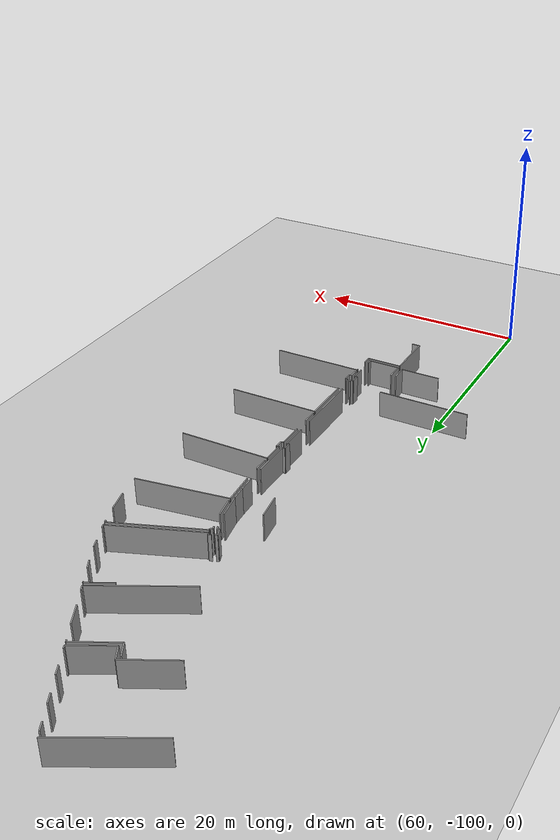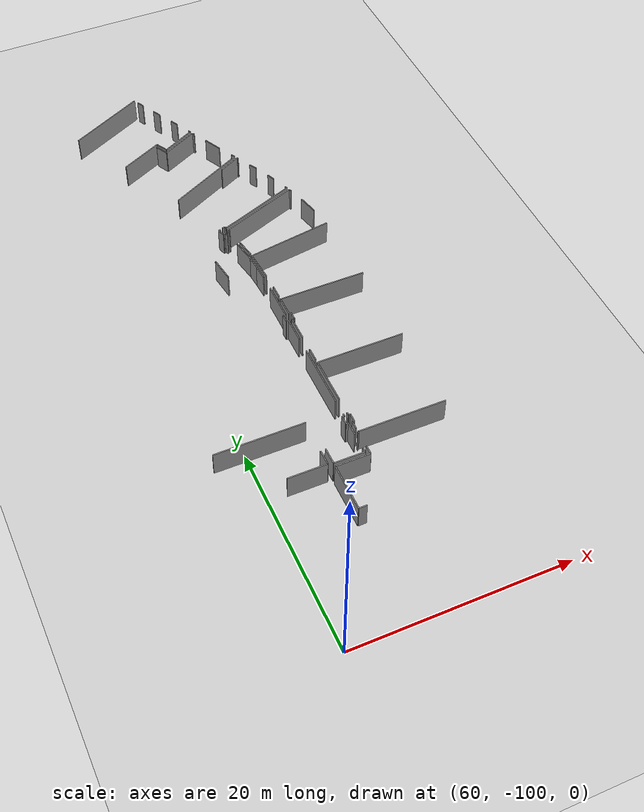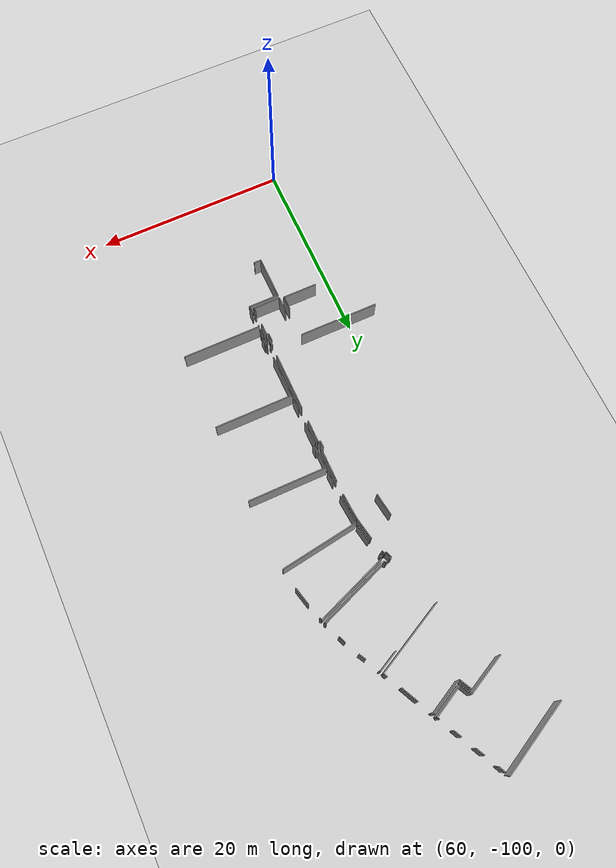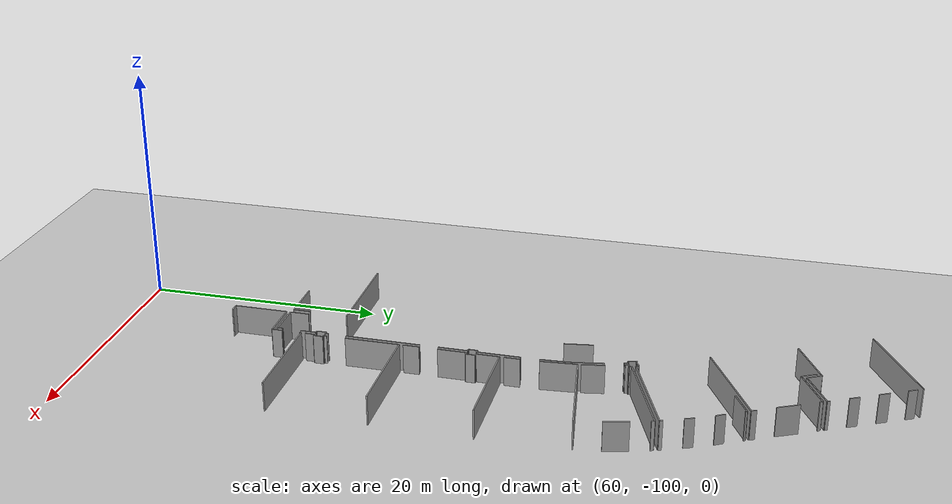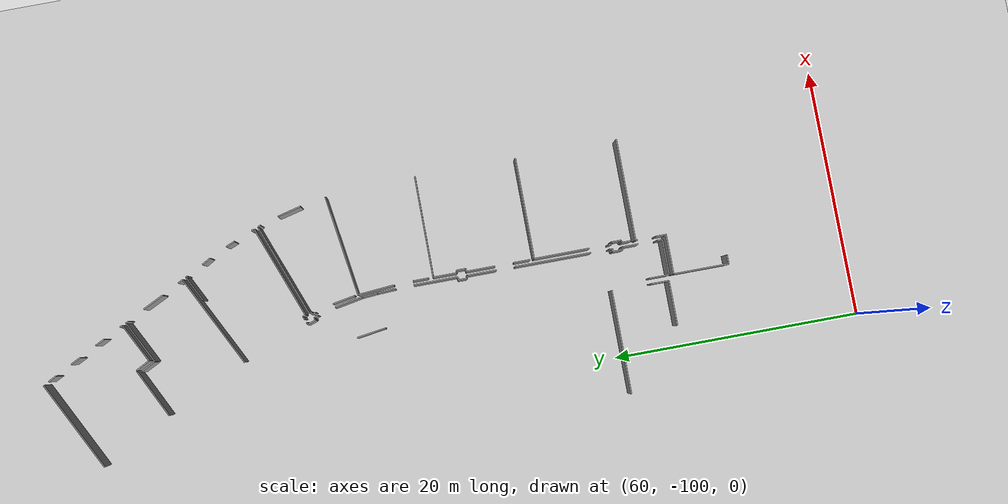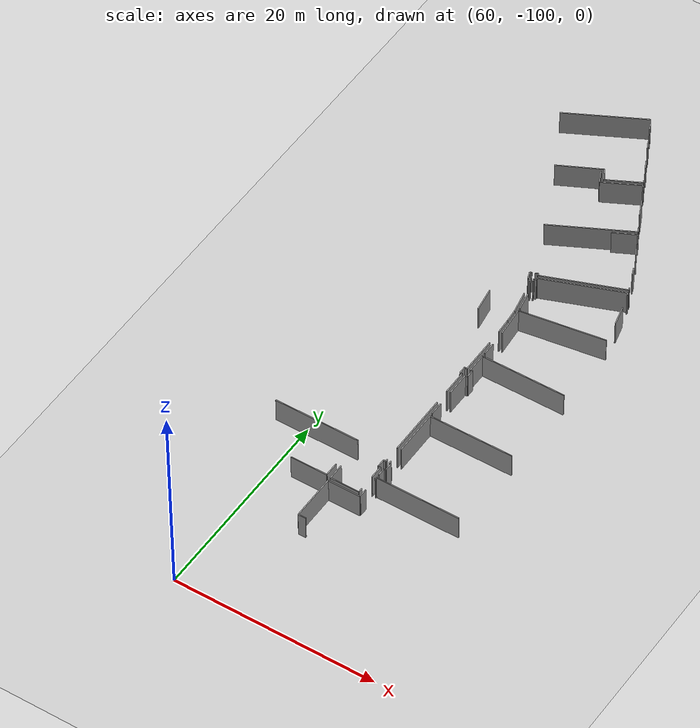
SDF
<sdf version="1.6">
 <world name="default">
  <model name="ground_plane">
   <static>1</static>
   <link name="link">
    <collision name="collision">
     <geometry><plane><normal>0 0 1</normal><size>100 100</size></plane></geometry>
     <surface><friction><ode><mu>100</mu><mu2>50</mu2></ode></friction></surface>
    </collision>
    <visual name="visual">
     <cast_shadows>0</cast_shadows>
     <geometry><plane><normal>0 0 1</normal><size>100 100</size></plane></geometry>
     <material>
      <script><uri>file://media/materials/scripts/gazebo.material</uri><name>Gazebo/Grey</name></script>
     </material>
    </visual>
   </link>
  </model>
  <model name="0510045925_40">
   <static>1</static>
   <link name="Wall_1785">
    <collision name="Wall_1785_Collision">
     <geometry><box><size>8.12931181482 0.1 2.5</size></box></geometry>
     <pose>4.06465590741 0 1.25 0 0 0</pose>
    </collision>
    <visual name="Wall_1785_Visual">
     <pose>4.06465590741 0 1.25 0 0 0</pose>
     <geometry><box><size>8.12931181482 0.1 2.5</size></box></geometry>
     <material>
      <script><uri>file://media/materials/scripts/gazebo.material</uri><name>Gazebo/Grey</name></script>
      <ambient>1 1 1 1</ambient>
     </material>
    </visual>
    <pose>200.14116393 -135.682013147 0 0 0 -2.66889741312</pose>
   </link>
   <link name="Wall_1795">
    <collision name="Wall_1795_Collision">
     <geometry><box><size>0.753893418735 0.1 2.5</size></box></geometry>
     <pose>0.376946709367 0 1.25 0 0 0</pose>
    </collision>
    <visual name="Wall_1795_Visual">
     <pose>0.376946709367 0 1.25 0 0 0</pose>
     <geometry><box><size>0.753893418735 0.1 2.5</size></box></geometry>
     <material>
      <script><uri>file://media/materials/scripts/gazebo.material</uri><name>Gazebo/Grey</name></script>
      <ambient>1 1 1 1</ambient>
     </material>
    </visual>
    <pose>200.35511789 -136.119819294 0 0 0 -1.11106318139</pose>
   </link>
   <link name="Wall_1796">
    <collision name="Wall_1796_Collision">
     <geometry><box><size>0.897021962788 0.1 2.5</size></box></geometry>
     <pose>0.448510981394 0 1.25 0 0 0</pose>
    </collision>
    <visual name="Wall_1796_Visual">
     <pose>0.448510981394 0 1.25 0 0 0</pose>
     <geometry><box><size>0.897021962788 0.1 2.5</size></box></geometry>
     <material>
      <script><uri>file://media/materials/scripts/gazebo.material</uri><name>Gazebo/Grey</name></script>
      <ambient>1 1 1 1</ambient>
     </material>
    </visual>
    <pose>201.376411766 -138.12205274 0 0 0 -1.10322617686</pose>
   </link>
   <link name="Wall_1797">
    <collision name="Wall_1797_Collision">
     <geometry><box><size>0.842309041607 0.1 2.5</size></box></geometry>
     <pose>0.421154520804 0 1.25 0 0 0</pose>
    </collision>
    <visual name="Wall_1797_Visual">
     <pose>0.421154520804 0 1.25 0 0 0</pose>
     <geometry><box><size>0.842309041607 0.1 2.5</size></box></geometry>
     <material>
      <script><uri>file://media/materials/scripts/gazebo.material</uri><name>Gazebo/Grey</name></script>
      <ambient>1 1 1 1</ambient>
     </material>
    </visual>
    <pose>202.510139337 -140.304230857 0 0 0 -1.10957426215</pose>
   </link>
   <link name="Wall_1798">
    <collision name="Wall_1798_Collision">
     <geometry><box><size>0.247111281047 0.1 2.5</size></box></geometry>
     <pose>0.123555640523 0 1.25 0 0 0</pose>
    </collision>
    <visual name="Wall_1798_Visual">
     <pose>0.123555640523 0 1.25 0 0 0</pose>
     <geometry><box><size>0.247111281047 0.1 2.5</size></box></geometry>
     <material>
      <script><uri>file://media/materials/scripts/gazebo.material</uri><name>Gazebo/Grey</name></script>
      <ambient>1 1 1 1</ambient>
     </material>
    </visual>
    <pose>203.588284561 -142.441740057 0 0 0 -1.09612481895</pose>
   </link>
   <link name="Wall_1799">
    <collision name="Wall_1799_Collision">
     <geometry><box><size>3.54072024602 0.1 2.5</size></box></geometry>
     <pose>1.77036012301 0 1.25 0 0 0</pose>
    </collision>
    <visual name="Wall_1799_Visual">
     <pose>1.77036012301 0 1.25 0 0 0</pose>
     <geometry><box><size>3.54072024602 0.1 2.5</size></box></geometry>
     <material>
      <script><uri>file://media/materials/scripts/gazebo.material</uri><name>Gazebo/Grey</name></script>
      <ambient>1 1 1 1</ambient>
     </material>
    </visual>
    <pose>203.701225857 -142.661531433 0 0 0 -2.66685326724</pose>
   </link>
   <link name="Wall_1800">
    <collision name="Wall_1800_Collision">
     <geometry><box><size>1.27436632297 0.1 2.5</size></box></geometry>
     <pose>0.637183161486 0 1.25 0 0 0</pose>
    </collision>
    <visual name="Wall_1800_Visual">
     <pose>0.637183161486 0 1.25 0 0 0</pose>
     <geometry><box><size>1.27436632297 0.1 2.5</size></box></geometry>
     <material>
      <script><uri>file://media/materials/scripts/gazebo.material</uri><name>Gazebo/Grey</name></script>
      <ambient>1 1 1 1</ambient>
     </material>
    </visual>
    <pose>200.552067206 -144.280018274 0 0 0 2.0630381182</pose>
   </link>
   <link name="Wall_1801">
    <collision name="Wall_1801_Collision">
     <geometry><box><size>4.43210162426 0.1 2.5</size></box></geometry>
     <pose>2.21605081213 0 1.25 0 0 0</pose>
    </collision>
    <visual name="Wall_1801_Visual">
     <pose>2.21605081213 0 1.25 0 0 0</pose>
     <geometry><box><size>4.43210162426 0.1 2.5</size></box></geometry>
     <material>
      <script><uri>file://media/materials/scripts/gazebo.material</uri><name>Gazebo/Grey</name></script>
      <ambient>1 1 1 1</ambient>
     </material>
    </visual>
    <pose>199.949798228 -143.156950331 0 0 0 -2.6817608425</pose>
   </link>
   <link name="Wall_1807">
    <collision name="Wall_1807_Collision">
     <geometry><box><size>1.31591320064 0.1 2.5</size></box></geometry>
     <pose>0.657956600318 0 1.25 0 0 0</pose>
    </collision>
    <visual name="Wall_1807_Visual">
     <pose>0.657956600318 0 1.25 0 0 0</pose>
     <geometry><box><size>1.31591320064 0.1 2.5</size></box></geometry>
     <material>
      <script><uri>file://media/materials/scripts/gazebo.material</uri><name>Gazebo/Grey</name></script>
      <ambient>1 1 1 1</ambient>
     </material>
    </visual>
    <pose>199.803862846 -143.545265349 0 0 0 -1.0967117639</pose>
   </link>
   <link name="Wall_1808">
    <collision name="Wall_1808_Collision">
     <geometry><box><size>3.83531071145 0.1 2.5</size></box></geometry>
     <pose>1.91765535572 0 1.25 0 0 0</pose>
    </collision>
    <visual name="Wall_1808_Visual">
     <pose>1.91765535572 0 1.25 0 0 0</pose>
     <geometry><box><size>3.83531071145 0.1 2.5</size></box></geometry>
     <material>
      <script><uri>file://media/materials/scripts/gazebo.material</uri><name>Gazebo/Grey</name></script>
      <ambient>1 1 1 1</ambient>
     </material>
    </visual>
    <pose>200.40460902 -144.716047816 0 0 0 0.472614784073</pose>
   </link>
   <link name="Wall_1809">
    <collision name="Wall_1809_Collision">
     <geometry><box><size>0.242578873041 0.1 2.5</size></box></geometry>
     <pose>0.12128943652 0 1.25 0 0 0</pose>
    </collision>
    <visual name="Wall_1809_Visual">
     <pose>0.12128943652 0 1.25 0 0 0</pose>
     <geometry><box><size>0.242578873041 0.1 2.5</size></box></geometry>
     <material>
      <script><uri>file://media/materials/scripts/gazebo.material</uri><name>Gazebo/Grey</name></script>
      <ambient>1 1 1 1</ambient>
     </material>
    </visual>
    <pose>203.819496967 -142.970153042 0 0 0 -1.03737473849</pose>
   </link>
   <link name="Wall_1810">
    <collision name="Wall_1810_Collision">
     <geometry><box><size>1.87617219558 0.1 2.5</size></box></geometry>
     <pose>0.938086097789 0 1.25 0 0 0</pose>
    </collision>
    <visual name="Wall_1810_Visual">
     <pose>0.938086097789 0 1.25 0 0 0</pose>
     <geometry><box><size>1.87617219558 0.1 2.5</size></box></geometry>
     <material>
      <script><uri>file://media/materials/scripts/gazebo.material</uri><name>Gazebo/Grey</name></script>
      <ambient>1 1 1 1</ambient>
     </material>
    </visual>
    <pose>204.666683587 -144.547270374 0 0 0 -1.1163444172</pose>
   </link>
   <link name="Wall_1811">
    <collision name="Wall_1811_Collision">
     <geometry><box><size>0.439257027635 0.1 2.5</size></box></geometry>
     <pose>0.219628513818 0 1.25 0 0 0</pose>
    </collision>
    <visual name="Wall_1811_Visual">
     <pose>0.219628513818 0 1.25 0 0 0</pose>
     <geometry><box><size>0.439257027635 0.1 2.5</size></box></geometry>
     <material>
      <script><uri>file://media/materials/scripts/gazebo.material</uri><name>Gazebo/Grey</name></script>
      <ambient>1 1 1 1</ambient>
     </material>
    </visual>
    <pose>206.226796274 -147.618512221 0 0 0 -1.10714871779</pose>
   </link>
   <link name="Wall_1812">
    <collision name="Wall_1812_Collision">
     <geometry><box><size>8.25032160723 0.1 2.5</size></box></geometry>
     <pose>4.12516080361 0 1.25 0 0 0</pose>
    </collision>
    <visual name="Wall_1812_Visual">
     <pose>4.12516080361 0 1.25 0 0 0</pose>
     <geometry><box><size>8.25032160723 0.1 2.5</size></box></geometry>
     <material>
      <script><uri>file://media/materials/scripts/gazebo.material</uri><name>Gazebo/Grey</name></script>
      <ambient>1 1 1 1</ambient>
     </material>
    </visual>
    <pose>206.423237989 -148.01139565 0 0 0 -2.67252459607</pose>
   </link>
   <link name="Wall_1866">
    <collision name="Wall_1866_Collision">
     <geometry><box><size>8.37592954878 0.1 2.5</size></box></geometry>
     <pose>4.18796477439 0 1.25 0 0 0</pose>
    </collision>
    <visual name="Wall_1866_Visual">
     <pose>4.18796477439 0 1.25 0 0 0</pose>
     <geometry><box><size>8.37592954878 0.1 2.5</size></box></geometry>
     <material>
      <script><uri>file://media/materials/scripts/gazebo.material</uri><name>Gazebo/Grey</name></script>
      <ambient>1 1 1 1</ambient>
     </material>
    </visual>
    <pose>199.367579503 -181.581355803 0 0 0 3.1415623524</pose>
   </link>
   <link name="Wall_1871">
    <collision name="Wall_1871_Collision">
     <geometry><box><size>1.43270475369 0.1 2.5</size></box></geometry>
     <pose>0.716352376843 0 1.25 0 0 0</pose>
    </collision>
    <visual name="Wall_1871_Visual">
     <pose>0.716352376843 0 1.25 0 0 0</pose>
     <geometry><box><size>1.43270475369 0.1 2.5</size></box></geometry>
     <material>
      <script><uri>file://media/materials/scripts/gazebo.material</uri><name>Gazebo/Grey</name></script>
      <ambient>1 1 1 1</ambient>
     </material>
    </visual>
    <pose>199.298545722 -184.782035989 0 0 0 -1.57079632679</pose>
   </link>
   <link name="Wall_1872">
    <collision name="Wall_1872_Collision">
     <geometry><box><size>3.63214131621 0.1 2.5</size></box></geometry>
     <pose>1.81607065811 0 1.25 0 0 0</pose>
    </collision>
    <visual name="Wall_1872_Visual">
     <pose>1.81607065811 0 1.25 0 0 0</pose>
     <geometry><box><size>3.63214131621 0.1 2.5</size></box></geometry>
     <material>
      <script><uri>file://media/materials/scripts/gazebo.material</uri><name>Gazebo/Grey</name></script>
      <ambient>1 1 1 1</ambient>
     </material>
    </visual>
    <pose>199.298545722 -186.214740743 0 0 0 3.14159265359</pose>
   </link>
   <link name="Wall_1876">
    <collision name="Wall_1876_Collision">
     <geometry><box><size>4.49354077308 0.1 2.5</size></box></geometry>
     <pose>2.24677038654 0 1.25 0 0 0</pose>
    </collision>
    <visual name="Wall_1876_Visual">
     <pose>2.24677038654 0 1.25 0 0 0</pose>
     <geometry><box><size>4.49354077308 0.1 2.5</size></box></geometry>
     <material>
      <script><uri>file://media/materials/scripts/gazebo.material</uri><name>Gazebo/Grey</name></script>
      <ambient>1 1 1 1</ambient>
     </material>
    </visual>
    <pose>199.758178726 -191.182381158 0 0 0 1.57079632679</pose>
   </link>
   <link name="Wall_1877">
    <collision name="Wall_1877_Collision">
     <geometry><box><size>3.20930940839 0.1 2.5</size></box></geometry>
     <pose>1.6046547042 0 1.25 0 0 0</pose>
    </collision>
    <visual name="Wall_1877_Visual">
     <pose>1.6046547042 0 1.25 0 0 0</pose>
     <geometry><box><size>3.20930940839 0.1 2.5</size></box></geometry>
     <material>
      <script><uri>file://media/materials/scripts/gazebo.material</uri><name>Gazebo/Grey</name></script>
      <ambient>1 1 1 1</ambient>
     </material>
    </visual>
    <pose>199.758178726 -186.688840385 0 0 0 0.0</pose>
   </link>
   <link name="Wall_1878">
    <collision name="Wall_1878_Collision">
     <geometry><box><size>0.84211060633 0.1 2.5</size></box></geometry>
     <pose>0.421055303165 0 1.25 0 0 0</pose>
    </collision>
    <visual name="Wall_1878_Visual">
     <pose>0.421055303165 0 1.25 0 0 0</pose>
     <geometry><box><size>0.84211060633 0.1 2.5</size></box></geometry>
     <material>
      <script><uri>file://media/materials/scripts/gazebo.material</uri><name>Gazebo/Grey</name></script>
      <ambient>1 1 1 1</ambient>
     </material>
    </visual>
    <pose>202.967488135 -186.688840385 0 0 0 1.57079632679</pose>
   </link>
   <link name="Wall_1879">
    <collision name="Wall_1879_Collision">
     <geometry><box><size>0.14898099033 0.1 2.5</size></box></geometry>
     <pose>0.0744904951651 0 1.25 0 0 0</pose>
    </collision>
    <visual name="Wall_1879_Visual">
     <pose>0.0744904951651 0 1.25 0 0 0</pose>
     <geometry><box><size>0.14898099033 0.1 2.5</size></box></geometry>
     <material>
      <script><uri>file://media/materials/scripts/gazebo.material</uri><name>Gazebo/Grey</name></script>
      <ambient>1 1 1 1</ambient>
     </material>
    </visual>
    <pose>202.967488135 -184.355650872 0 0 0 1.57079632679</pose>
   </link>
   <link name="Wall_1880">
    <collision name="Wall_1880_Collision">
     <geometry><box><size>8.25283622243 0.1 2.5</size></box></geometry>
     <pose>4.12641811122 0 1.25 0 0 0</pose>
    </collision>
    <visual name="Wall_1880_Visual">
     <pose>4.12641811122 0 1.25 0 0 0</pose>
     <geometry><box><size>8.25283622243 0.1 2.5</size></box></geometry>
     <material>
      <script><uri>file://media/materials/scripts/gazebo.material</uri><name>Gazebo/Grey</name></script>
      <ambient>1 1 1 1</ambient>
     </material>
    </visual>
    <pose>202.967488135 -184.206669881 0 0 0 0.0</pose>
   </link>
   <link name="Wall_1885">
    <collision name="Wall_1885_Collision">
     <geometry><box><size>0.746181249551 0.1 2.5</size></box></geometry>
     <pose>0.373090624776 0 1.25 0 0 0</pose>
    </collision>
    <visual name="Wall_1885_Visual">
     <pose>0.373090624776 0 1.25 0 0 0</pose>
     <geometry><box><size>0.746181249551 0.1 2.5</size></box></geometry>
     <material>
      <script><uri>file://media/materials/scripts/gazebo.material</uri><name>Gazebo/Grey</name></script>
      <ambient>1 1 1 1</ambient>
     </material>
    </visual>
    <pose>200.504352681 -191.179081749 0 0 0 -3.1371709137</pose>
   </link>
   <link name="Wall_1886">
    <collision name="Wall_1886_Collision">
     <geometry><box><size>8.24065379051 0.1 2.5</size></box></geometry>
     <pose>4.12032689526 0 1.25 0 0 0</pose>
    </collision>
    <visual name="Wall_1886_Visual">
     <pose>4.12032689526 0 1.25 0 0 0</pose>
     <geometry><box><size>8.24065379051 0.1 2.5</size></box></geometry>
     <material>
      <script><uri>file://media/materials/scripts/gazebo.material</uri><name>Gazebo/Grey</name></script>
      <ambient>1 1 1 1</ambient>
     </material>
    </visual>
    <pose>202.975102155 -175.949265247 0 0 0 0.0</pose>
   </link>
   <link name="Wall_1892">
    <collision name="Wall_1892_Collision">
     <geometry><box><size>0.774092028121 0.1 2.5</size></box></geometry>
     <pose>0.387046014061 0 1.25 0 0 0</pose>
    </collision>
    <visual name="Wall_1892_Visual">
     <pose>0.387046014061 0 1.25 0 0 0</pose>
     <geometry><box><size>0.774092028121 0.1 2.5</size></box></geometry>
     <material>
      <script><uri>file://media/materials/scripts/gazebo.material</uri><name>Gazebo/Grey</name></script>
      <ambient>1 1 1 1</ambient>
     </material>
    </visual>
    <pose>202.977386361 -183.848049542 0 0 0 1.57079632679</pose>
   </link>
   <link name="Wall_1893">
    <collision name="Wall_1893_Collision">
     <geometry><box><size>0.186797289409 0.1 2.5</size></box></geometry>
     <pose>0.0933986447045 0 1.25 0 0 0</pose>
    </collision>
    <visual name="Wall_1893_Visual">
     <pose>0.0933986447045 0 1.25 0 0 0</pose>
     <geometry><box><size>0.186797289409 0.1 2.5</size></box></geometry>
     <material>
      <script><uri>file://media/materials/scripts/gazebo.material</uri><name>Gazebo/Grey</name></script>
      <ambient>1 1 1 1</ambient>
     </material>
    </visual>
    <pose>202.977386361 -183.073957514 0 0 0 0.0</pose>
   </link>
   <link name="Wall_1894">
    <collision name="Wall_1894_Collision">
     <geometry><box><size>0.783482652725 0.1 2.5</size></box></geometry>
     <pose>0.391741326362 0 1.25 0 0 0</pose>
    </collision>
    <visual name="Wall_1894_Visual">
     <pose>0.391741326362 0 1.25 0 0 0</pose>
     <geometry><box><size>0.783482652725 0.1 2.5</size></box></geometry>
     <material>
      <script><uri>file://media/materials/scripts/gazebo.material</uri><name>Gazebo/Grey</name></script>
      <ambient>1 1 1 1</ambient>
     </material>
    </visual>
    <pose>203.16418365 -183.073957514 0 0 0 1.57079632679</pose>
   </link>
   <link name="Wall_1895">
    <collision name="Wall_1895_Collision">
     <geometry><box><size>0.170300246187 0.1 2.5</size></box></geometry>
     <pose>0.0851501230933 0 1.25 0 0 0</pose>
    </collision>
    <visual name="Wall_1895_Visual">
     <pose>0.0851501230933 0 1.25 0 0 0</pose>
     <geometry><box><size>0.170300246187 0.1 2.5</size></box></geometry>
     <material>
      <script><uri>file://media/materials/scripts/gazebo.material</uri><name>Gazebo/Grey</name></script>
      <ambient>1 1 1 1</ambient>
     </material>
    </visual>
    <pose>203.16418365 -182.290474861 0 0 0 3.14159265359</pose>
   </link>
   <link name="Wall_1896">
    <collision name="Wall_1896_Collision">
     <geometry><box><size>0.287048552067 0.1 2.5</size></box></geometry>
     <pose>0.143524276034 0 1.25 0 0 0</pose>
    </collision>
    <visual name="Wall_1896_Visual">
     <pose>0.143524276034 0 1.25 0 0 0</pose>
     <geometry><box><size>0.287048552067 0.1 2.5</size></box></geometry>
     <material>
      <script><uri>file://media/materials/scripts/gazebo.material</uri><name>Gazebo/Grey</name></script>
      <ambient>1 1 1 1</ambient>
     </material>
    </visual>
    <pose>202.993883404 -182.290474861 0 0 0 1.57079632679</pose>
   </link>
   <link name="Wall_1897">
    <collision name="Wall_1897_Collision">
     <geometry><box><size>4.50576234786 0.1 2.5</size></box></geometry>
     <pose>2.25288117393 0 1.25 0 0 0</pose>
    </collision>
    <visual name="Wall_1897_Visual">
     <pose>2.25288117393 0 1.25 0 0 0</pose>
     <geometry><box><size>4.50576234786 0.1 2.5</size></box></geometry>
     <material>
      <script><uri>file://media/materials/scripts/gazebo.material</uri><name>Gazebo/Grey</name></script>
      <ambient>1 1 1 1</ambient>
     </material>
    </visual>
    <pose>202.993883404 -180.454988452 0 0 0 1.57496461224</pose>
   </link>
   <link name="Wall_1898">
    <collision name="Wall_1898_Collision">
     <geometry><box><size>1.31950965712 0.1 2.5</size></box></geometry>
     <pose>0.659754828558 0 1.25 0 0 0</pose>
    </collision>
    <visual name="Wall_1898_Visual">
     <pose>0.659754828558 0 1.25 0 0 0</pose>
     <geometry><box><size>1.31950965712 0.1 2.5</size></box></geometry>
     <material>
      <script><uri>file://media/materials/scripts/gazebo.material</uri><name>Gazebo/Grey</name></script>
      <ambient>1 1 1 1</ambient>
     </material>
    </visual>
    <pose>202.95784371 -175.619324383 0 0 0 1.57079632679</pose>
   </link>
   <link name="Wall_1899">
    <collision name="Wall_1899_Collision">
     <geometry><box><size>2.35882338012 0.1 2.5</size></box></geometry>
     <pose>1.17941169006 0 1.25 0 0 0</pose>
    </collision>
    <visual name="Wall_1899_Visual">
     <pose>1.17941169006 0 1.25 0 0 0</pose>
     <geometry><box><size>2.35882338012 0.1 2.5</size></box></geometry>
     <material>
      <script><uri>file://media/materials/scripts/gazebo.material</uri><name>Gazebo/Grey</name></script>
      <ambient>1 1 1 1</ambient>
     </material>
    </visual>
    <pose>202.95784371 -172.779802543 0 0 0 1.57079632679</pose>
   </link>
   <link name="Wall_1900">
    <collision name="Wall_1900_Collision">
     <geometry><box><size>0.229435801122 0.1 2.5</size></box></geometry>
     <pose>0.114717900561 0 1.25 0 0 0</pose>
    </collision>
    <visual name="Wall_1900_Visual">
     <pose>0.114717900561 0 1.25 0 0 0</pose>
     <geometry><box><size>0.229435801122 0.1 2.5</size></box></geometry>
     <material>
      <script><uri>file://media/materials/scripts/gazebo.material</uri><name>Gazebo/Grey</name></script>
      <ambient>1 1 1 1</ambient>
     </material>
    </visual>
    <pose>202.95784371 -170.420979163 0 0 0 0.0</pose>
   </link>
   <link name="Wall_1901">
    <collision name="Wall_1901_Collision">
     <geometry><box><size>0.762163396868 0.1 2.5</size></box></geometry>
     <pose>0.381081698434 0 1.25 0 0 0</pose>
    </collision>
    <visual name="Wall_1901_Visual">
     <pose>0.381081698434 0 1.25 0 0 0</pose>
     <geometry><box><size>0.762163396868 0.1 2.5</size></box></geometry>
     <material>
      <script><uri>file://media/materials/scripts/gazebo.material</uri><name>Gazebo/Grey</name></script>
      <ambient>1 1 1 1</ambient>
     </material>
    </visual>
    <pose>203.187279511 -170.420979163 0 0 0 1.57079632679</pose>
   </link>
   <link name="Wall_1902">
    <collision name="Wall_1902_Collision">
     <geometry><box><size>0.207608943935 0.1 2.5</size></box></geometry>
     <pose>0.103804471968 0 1.25 0 0 0</pose>
    </collision>
    <visual name="Wall_1902_Visual">
     <pose>0.103804471968 0 1.25 0 0 0</pose>
     <geometry><box><size>0.207608943935 0.1 2.5</size></box></geometry>
     <material>
      <script><uri>file://media/materials/scripts/gazebo.material</uri><name>Gazebo/Grey</name></script>
      <ambient>1 1 1 1</ambient>
     </material>
    </visual>
    <pose>203.187279511 -169.658815766 0 0 0 3.14159265359</pose>
   </link>
   <link name="Wall_1903">
    <collision name="Wall_1903_Collision">
     <geometry><box><size>1.91517981777 0.1 2.5</size></box></geometry>
     <pose>0.957589908886 0 1.25 0 0 0</pose>
    </collision>
    <visual name="Wall_1903_Visual">
     <pose>0.957589908886 0 1.25 0 0 0</pose>
     <geometry><box><size>1.91517981777 0.1 2.5</size></box></geometry>
     <material>
      <script><uri>file://media/materials/scripts/gazebo.material</uri><name>Gazebo/Grey</name></script>
      <ambient>1 1 1 1</ambient>
     </material>
    </visual>
    <pose>202.979670567 -169.658815766 0 0 0 1.57079632679</pose>
   </link>
   <link name="Wall_1904">
    <collision name="Wall_1904_Collision">
     <geometry><box><size>8.24496840182 0.1 2.5</size></box></geometry>
     <pose>4.12248420091 0 1.25 0 0 0</pose>
    </collision>
    <visual name="Wall_1904_Visual">
     <pose>4.12248420091 0 1.25 0 0 0</pose>
     <geometry><box><size>8.24496840182 0.1 2.5</size></box></geometry>
     <material>
      <script><uri>file://media/materials/scripts/gazebo.material</uri><name>Gazebo/Grey</name></script>
      <ambient>1 1 1 1</ambient>
     </material>
    </visual>
    <pose>202.979670567 -167.743635948 0 0 0 0.0</pose>
   </link>
   <link name="Wall_1910">
    <collision name="Wall_1910_Collision">
     <geometry><box><size>8.28931608329 0.1 2.5</size></box></geometry>
     <pose>4.14465804164 0 1.25 0 0 0</pose>
    </collision>
    <visual name="Wall_1910_Visual">
     <pose>4.14465804164 0 1.25 0 0 0</pose>
     <geometry><box><size>8.28931608329 0.1 2.5</size></box></geometry>
     <material>
      <script><uri>file://media/materials/scripts/gazebo.material</uri><name>Gazebo/Grey</name></script>
      <ambient>1 1 1 1</ambient>
     </material>
    </visual>
    <pose>202.693891018 -161.59150783 0 0 0 0.145209519486</pose>
   </link>
   <link name="Wall_1916">
    <collision name="Wall_1916_Collision">
     <geometry><box><size>1.29387578995 0.1 2.5</size></box></geometry>
     <pose>0.646937894977 0 1.25 0 0 0</pose>
    </collision>
    <visual name="Wall_1916_Visual">
     <pose>0.646937894977 0 1.25 0 0 0</pose>
     <geometry><box><size>1.29387578995 0.1 2.5</size></box></geometry>
     <material>
      <script><uri>file://media/materials/scripts/gazebo.material</uri><name>Gazebo/Grey</name></script>
      <ambient>1 1 1 1</ambient>
     </material>
    </visual>
    <pose>202.98093957 -167.381970001 0 0 0 1.57079632679</pose>
   </link>
   <link name="Wall_1917">
    <collision name="Wall_1917_Collision">
     <geometry><box><size>2.97673885721 0.1 2.5</size></box></geometry>
     <pose>1.4883694286 0 1.25 0 0 0</pose>
    </collision>
    <visual name="Wall_1917_Visual">
     <pose>1.4883694286 0 1.25 0 0 0</pose>
     <geometry><box><size>2.97673885721 0.1 2.5</size></box></geometry>
     <material>
      <script><uri>file://media/materials/scripts/gazebo.material</uri><name>Gazebo/Grey</name></script>
      <ambient>1 1 1 1</ambient>
     </material>
    </visual>
    <pose>202.932209842 -164.558691404 0 0 0 1.65094247449</pose>
   </link>
   <link name="Wall_1918">
    <collision name="Wall_1918_Collision">
     <geometry><box><size>1.85416316134 0.1 2.5</size></box></geometry>
     <pose>0.927081580671 0 1.25 0 0 0</pose>
    </collision>
    <visual name="Wall_1918_Visual">
     <pose>0.927081580671 0 1.25 0 0 0</pose>
     <geometry><box><size>1.85416316134 0.1 2.5</size></box></geometry>
     <material>
      <script><uri>file://media/materials/scripts/gazebo.material</uri><name>Gazebo/Grey</name></script>
      <ambient>1 1 1 1</ambient>
     </material>
    </visual>
    <pose>202.666226746 -161.315118906 0 0 0 1.74580155781</pose>
   </link>
   <link name="Wall_1919">
    <collision name="Wall_1919_Collision">
     <geometry><box><size>0.274732391146 0.1 2.5</size></box></geometry>
     <pose>0.137366195573 0 1.25 0 0 0</pose>
    </collision>
    <visual name="Wall_1919_Visual">
     <pose>0.137366195573 0 1.25 0 0 0</pose>
     <geometry><box><size>0.274732391146 0.1 2.5</size></box></geometry>
     <material>
      <script><uri>file://media/materials/scripts/gazebo.material</uri><name>Gazebo/Grey</name></script>
      <ambient>1 1 1 1</ambient>
     </material>
    </visual>
    <pose>201.909393163 -158.000736022 0 0 0 1.91767309429</pose>
   </link>
   <link name="Wall_1920">
    <collision name="Wall_1920_Collision">
     <geometry><box><size>0.243886592474 0.1 2.5</size></box></geometry>
     <pose>0.121943296237 0 1.25 0 0 0</pose>
    </collision>
    <visual name="Wall_1920_Visual">
     <pose>0.121943296237 0 1.25 0 0 0</pose>
     <geometry><box><size>0.243886592474 0.1 2.5</size></box></geometry>
     <material>
      <script><uri>file://media/materials/scripts/gazebo.material</uri><name>Gazebo/Grey</name></script>
      <ambient>1 1 1 1</ambient>
     </material>
    </visual>
    <pose>201.815994518 -157.742366945 0 0 0 0.423613119344</pose>
   </link>
   <link name="Wall_1921">
    <collision name="Wall_1921_Collision">
     <geometry><box><size>0.162287218413 0.1 2.5</size></box></geometry>
     <pose>0.0811436092067 0 1.25 0 0 0</pose>
    </collision>
    <visual name="Wall_1921_Visual">
     <pose>0.0811436092067 0 1.25 0 0 0</pose>
     <geometry><box><size>0.162287218413 0.1 2.5</size></box></geometry>
     <material>
      <script><uri>file://media/materials/scripts/gazebo.material</uri><name>Gazebo/Grey</name></script>
      <ambient>1 1 1 1</ambient>
     </material>
    </visual>
    <pose>202.0383239 -157.642115682 0 0 0 1.88562315405</pose>
   </link>
   <link name="Wall_1922">
    <collision name="Wall_1922_Collision">
     <geometry><box><size>8.02119525661 0.1 2.5</size></box></geometry>
     <pose>4.0105976283 0 1.25 0 0 0</pose>
    </collision>
    <visual name="Wall_1922_Visual">
     <pose>4.0105976283 0 1.25 0 0 0</pose>
     <geometry><box><size>8.02119525661 0.1 2.5</size></box></geometry>
     <material>
      <script><uri>file://media/materials/scripts/gazebo.material</uri><name>Gazebo/Grey</name></script>
      <ambient>1 1 1 1</ambient>
     </material>
    </visual>
    <pose>201.988071369 -157.487804878 0 0 0 0.360392728864</pose>
   </link>
   <link name="Wall_1923">
    <collision name="Wall_1923_Collision">
     <geometry><box><size>0.258056873041 0.1 2.5</size></box></geometry>
     <pose>0.129028436521 0 1.25 0 0 0</pose>
    </collision>
    <visual name="Wall_1923_Visual">
     <pose>0.129028436521 0 1.25 0 0 0</pose>
     <geometry><box><size>0.258056873041 0.1 2.5</size></box></geometry>
     <material>
      <script><uri>file://media/materials/scripts/gazebo.material</uri><name>Gazebo/Grey</name></script>
      <ambient>1 1 1 1</ambient>
     </material>
    </visual>
    <pose>209.493972234 -154.659196467 0 0 0 -1.17714002277</pose>
   </link>
   <link name="Wall_1924">
    <collision name="Wall_1924_Collision">
     <geometry><box><size>1.98009159774 0.1 2.5</size></box></geometry>
     <pose>0.990045798869 0 1.25 0 0 0</pose>
    </collision>
    <visual name="Wall_1924_Visual">
     <pose>0.990045798869 0 1.25 0 0 0</pose>
     <geometry><box><size>1.98009159774 0.1 2.5</size></box></geometry>
     <material>
      <script><uri>file://media/materials/scripts/gazebo.material</uri><name>Gazebo/Grey</name></script>
      <ambient>1 1 1 1</ambient>
     </material>
    </visual>
    <pose>210.033552448 -156.383010583 0 0 0 -1.33125796813</pose>
   </link>
   <link name="Wall_1927">
    <collision name="Wall_1927_Collision">
     <geometry><box><size>2.32003129059 0.1 2.5</size></box></geometry>
     <pose>1.16001564529 0 1.25 0 0 0</pose>
    </collision>
    <visual name="Wall_1927_Visual">
     <pose>1.16001564529 0 1.25 0 0 0</pose>
     <geometry><box><size>2.32003129059 0.1 2.5</size></box></geometry>
     <material>
      <script><uri>file://media/materials/scripts/gazebo.material</uri><name>Gazebo/Grey</name></script>
      <ambient>1 1 1 1</ambient>
     </material>
    </visual>
    <pose>204.500697952 -149.340295932 0 0 0 0.468539937874</pose>
   </link>
   <link name="Wall_1928">
    <collision name="Wall_1928_Collision">
     <geometry><box><size>0.138544712938 0.1 2.5</size></box></geometry>
     <pose>0.0692723564692 0 1.25 0 0 0</pose>
    </collision>
    <visual name="Wall_1928_Visual">
     <pose>0.0692723564692 0 1.25 0 0 0</pose>
     <geometry><box><size>0.138544712938 0.1 2.5</size></box></geometry>
     <material>
      <script><uri>file://media/materials/scripts/gazebo.material</uri><name>Gazebo/Grey</name></script>
      <ambient>1 1 1 1</ambient>
     </material>
    </visual>
    <pose>206.570696175 -148.292606787 0 0 0 -1.03006265751</pose>
   </link>
   <link name="Wall_1929">
    <collision name="Wall_1929_Collision">
     <geometry><box><size>0.801624649277 0.1 2.5</size></box></geometry>
     <pose>0.400812324638 0 1.25 0 0 0</pose>
    </collision>
    <visual name="Wall_1929_Visual">
     <pose>0.400812324638 0 1.25 0 0 0</pose>
     <geometry><box><size>0.801624649277 0.1 2.5</size></box></geometry>
     <material>
      <script><uri>file://media/materials/scripts/gazebo.material</uri><name>Gazebo/Grey</name></script>
      <ambient>1 1 1 1</ambient>
     </material>
    </visual>
    <pose>207.330321565 -149.773279866 0 0 0 -1.05785497112</pose>
   </link>
   <link name="Wall_1930">
    <collision name="Wall_1930_Collision">
     <geometry><box><size>0.782031718551 0.1 2.5</size></box></geometry>
     <pose>0.391015859276 0 1.25 0 0 0</pose>
    </collision>
    <visual name="Wall_1930_Visual">
     <pose>0.391015859276 0 1.25 0 0 0</pose>
     <geometry><box><size>0.782031718551 0.1 2.5</size></box></geometry>
     <material>
      <script><uri>file://media/materials/scripts/gazebo.material</uri><name>Gazebo/Grey</name></script>
      <ambient>1 1 1 1</ambient>
     </material>
    </visual>
    <pose>208.398060963 -151.899368036 0 0 0 -1.18516735241</pose>
   </link>
   <link name="Wall_1931">
    <collision name="Wall_1931_Collision">
     <geometry><box><size>0.258632964664 0.1 2.5</size></box></geometry>
     <pose>0.129316482332 0 1.25 0 0 0</pose>
    </collision>
    <visual name="Wall_1931_Visual">
     <pose>0.129316482332 0 1.25 0 0 0</pose>
     <geometry><box><size>0.258632964664 0.1 2.5</size></box></geometry>
     <material>
      <script><uri>file://media/materials/scripts/gazebo.material</uri><name>Gazebo/Grey</name></script>
      <ambient>1 1 1 1</ambient>
     </material>
    </visual>
    <pose>209.298291922 -154.094489988 0 0 0 -1.23166701319</pose>
   </link>
   <link name="Wall_1932">
    <collision name="Wall_1932_Collision">
     <geometry><box><size>8.01324685131 0.1 2.5</size></box></geometry>
     <pose>4.00662342566 0 1.25 0 0 0</pose>
    </collision>
    <visual name="Wall_1932_Visual">
     <pose>4.00662342566 0 1.25 0 0 0</pose>
     <geometry><box><size>8.01324685131 0.1 2.5</size></box></geometry>
     <material>
      <script><uri>file://media/materials/scripts/gazebo.material</uri><name>Gazebo/Grey</name></script>
      <ambient>1 1 1 1</ambient>
     </material>
    </visual>
    <pose>209.384330347 -154.338392427 0 0 0 -2.7804198438</pose>
   </link>
   <link name="Wall_1933">
    <collision name="Wall_1933_Collision">
     <geometry><box><size>0.228954788229 0.1 2.5</size></box></geometry>
     <pose>0.114477394114 0 1.25 0 0 0</pose>
    </collision>
    <visual name="Wall_1933_Visual">
     <pose>0.114477394114 0 1.25 0 0 0</pose>
     <geometry><box><size>0.228954788229 0.1 2.5</size></box></geometry>
     <material>
      <script><uri>file://media/materials/scripts/gazebo.material</uri><name>Gazebo/Grey</name></script>
      <ambient>1 1 1 1</ambient>
     </material>
    </visual>
    <pose>201.888073907 -157.170046446 0 0 0 2.02155421836</pose>
   </link>
   <link name="Wall_1934">
    <collision name="Wall_1934_Collision">
     <geometry><box><size>0.27599104001 0.1 2.5</size></box></geometry>
     <pose>0.137995520005 0 1.25 0 0 0</pose>
    </collision>
    <visual name="Wall_1934_Visual">
     <pose>0.137995520005 0 1.25 0 0 0</pose>
     <geometry><box><size>0.27599104001 0.1 2.5</size></box></geometry>
     <material>
      <script><uri>file://media/materials/scripts/gazebo.material</uri><name>Gazebo/Grey</name></script>
      <ambient>1 1 1 1</ambient>
     </material>
    </visual>
    <pose>201.788330245 -156.963960306 0 0 0 -2.76194010141</pose>
   </link>
   <link name="Wall_1941">
    <collision name="Wall_1941_Collision">
     <geometry><box><size>0.202610201061 0.1 2.5</size></box></geometry>
     <pose>0.101305100531 0 1.25 0 0 0</pose>
    </collision>
    <visual name="Wall_1941_Visual">
     <pose>0.101305100531 0 1.25 0 0 0</pose>
     <geometry><box><size>0.202610201061 0.1 2.5</size></box></geometry>
     <material>
      <script><uri>file://media/materials/scripts/gazebo.material</uri><name>Gazebo/Grey</name></script>
      <ambient>1 1 1 1</ambient>
     </material>
    </visual>
    <pose>201.279713713 -157.159640618 0 0 0 -2.76038843988</pose>
   </link>
   <link name="Wall_1942">
    <collision name="Wall_1942_Collision">
     <geometry><box><size>0.708540185169 0.1 2.5</size></box></geometry>
     <pose>0.354270092585 0 1.25 0 0 0</pose>
    </collision>
    <visual name="Wall_1942_Visual">
     <pose>0.354270092585 0 1.25 0 0 0</pose>
     <geometry><box><size>0.708540185169 0.1 2.5</size></box></geometry>
     <material>
      <script><uri>file://media/materials/scripts/gazebo.material</uri><name>Gazebo/Grey</name></script>
      <ambient>1 1 1 1</ambient>
     </material>
    </visual>
    <pose>201.09164742 -157.235019416 0 0 0 -1.2182305073</pose>
   </link>
   <link name="Wall_1943">
    <collision name="Wall_1943_Collision">
     <geometry><box><size>0.20755820863 0.1 2.5</size></box></geometry>
     <pose>0.103779104315 0 1.25 0 0 0</pose>
    </collision>
    <visual name="Wall_1943_Visual">
     <pose>0.103779104315 0 1.25 0 0 0</pose>
     <geometry><box><size>0.20755820863 0.1 2.5</size></box></geometry>
     <material>
      <script><uri>file://media/materials/scripts/gazebo.material</uri><name>Gazebo/Grey</name></script>
      <ambient>1 1 1 1</ambient>
     </material>
    </visual>
    <pose>201.336311261 -157.899977158 0 0 0 0.436848774643</pose>
   </link>
   <link name="Wall_1944">
    <collision name="Wall_1944_Collision">
     <geometry><box><size>0.343488610381 0.1 2.5</size></box></geometry>
     <pose>0.17174430519 0 1.25 0 0 0</pose>
    </collision>
    <visual name="Wall_1944_Visual">
     <pose>0.17174430519 0 1.25 0 0 0</pose>
     <geometry><box><size>0.343488610381 0.1 2.5</size></box></geometry>
     <material>
      <script><uri>file://media/materials/scripts/gazebo.material</uri><name>Gazebo/Grey</name></script>
      <ambient>1 1 1 1</ambient>
     </material>
    </visual>
    <pose>201.524377554 -157.812162128 0 0 0 -1.1971504348</pose>
   </link>
   <link name="Wall_1945">
    <collision name="Wall_1945_Collision">
     <geometry><box><size>2.28666880757 0.1 2.5</size></box></geometry>
     <pose>1.14333440379 0 1.25 0 0 0</pose>
    </collision>
    <visual name="Wall_1945_Visual">
     <pose>1.14333440379 0 1.25 0 0 0</pose>
     <geometry><box><size>2.28666880757 0.1 2.5</size></box></geometry>
     <material>
      <script><uri>file://media/materials/scripts/gazebo.material</uri><name>Gazebo/Grey</name></script>
      <ambient>1 1 1 1</ambient>
     </material>
    </visual>
    <pose>202.045176518 -159.601710616 0 0 0 -1.38763700469</pose>
   </link>
   <link name="Wall_1946">
    <collision name="Wall_1946_Collision">
     <geometry><box><size>1.28043491922 0.1 2.5</size></box></geometry>
     <pose>0.640217459608 0 1.25 0 0 0</pose>
    </collision>
    <visual name="Wall_1946_Visual">
     <pose>0.640217459608 0 1.25 0 0 0</pose>
     <geometry><box><size>1.28043491922 0.1 2.5</size></box></geometry>
     <material>
      <script><uri>file://media/materials/scripts/gazebo.material</uri><name>Gazebo/Grey</name></script>
      <ambient>1 1 1 1</ambient>
     </material>
    </visual>
    <pose>202.46166341 -161.850130707 0 0 0 -1.49102956769</pose>
   </link>
   <link name="Wall_1947">
    <collision name="Wall_1947_Collision">
     <geometry><box><size>1.49510161006 0.1 2.5</size></box></geometry>
     <pose>0.74755080503 0 1.25 0 0 0</pose>
    </collision>
    <visual name="Wall_1947_Visual">
     <pose>0.74755080503 0 1.25 0 0 0</pose>
     <geometry><box><size>1.49510161006 0.1 2.5</size></box></geometry>
     <material>
      <script><uri>file://media/materials/scripts/gazebo.material</uri><name>Gazebo/Grey</name></script>
      <ambient>1 1 1 1</ambient>
     </material>
    </visual>
    <pose>202.563691277 -163.126494251 0 0 0 -1.5225672705</pose>
   </link>
   <link name="Wall_1948">
    <collision name="Wall_1948_Collision">
     <geometry><box><size>3.56716834598 0.1 2.5</size></box></geometry>
     <pose>1.78358417299 0 1.25 0 0 0</pose>
    </collision>
    <visual name="Wall_1948_Visual">
     <pose>1.78358417299 0 1.25 0 0 0</pose>
     <geometry><box><size>3.56716834598 0.1 2.5</size></box></geometry>
     <material>
      <script><uri>file://media/materials/scripts/gazebo.material</uri><name>Gazebo/Grey</name></script>
      <ambient>1 1 1 1</ambient>
     </material>
    </visual>
    <pose>202.657089922 -166.105352656 0 0 0 -1.57079632679</pose>
   </link>
   <link name="Wall_1949">
    <collision name="Wall_1949_Collision">
     <geometry><box><size>0.251262658308 0.1 2.5</size></box></geometry>
     <pose>0.125631329154 0 1.25 0 0 0</pose>
    </collision>
    <visual name="Wall_1949_Visual">
     <pose>0.125631329154 0 1.25 0 0 0</pose>
     <geometry><box><size>0.251262658308 0.1 2.5</size></box></geometry>
     <material>
      <script><uri>file://media/materials/scripts/gazebo.material</uri><name>Gazebo/Grey</name></script>
      <ambient>1 1 1 1</ambient>
     </material>
    </visual>
    <pose>202.657089922 -169.672521002 0 0 0 3.14159265359</pose>
   </link>
   <link name="Wall_1950">
    <collision name="Wall_1950_Collision">
     <geometry><box><size>0.738306134362 0.1 2.5</size></box></geometry>
     <pose>0.369153067181 0 1.25 0 0 0</pose>
    </collision>
    <visual name="Wall_1950_Visual">
     <pose>0.369153067181 0 1.25 0 0 0</pose>
     <geometry><box><size>0.738306134362 0.1 2.5</size></box></geometry>
     <material>
      <script><uri>file://media/materials/scripts/gazebo.material</uri><name>Gazebo/Grey</name></script>
      <ambient>1 1 1 1</ambient>
     </material>
    </visual>
    <pose>202.405827263 -169.672521002 0 0 0 -1.57079632679</pose>
   </link>
   <link name="Wall_1951">
    <collision name="Wall_1951_Collision">
     <geometry><box><size>0.220552777848 0.1 2.5</size></box></geometry>
     <pose>0.110276388924 0 1.25 0 0 0</pose>
    </collision>
    <visual name="Wall_1951_Visual">
     <pose>0.110276388924 0 1.25 0 0 0</pose>
     <geometry><box><size>0.220552777848 0.1 2.5</size></box></geometry>
     <material>
      <script><uri>file://media/materials/scripts/gazebo.material</uri><name>Gazebo/Grey</name></script>
      <ambient>1 1 1 1</ambient>
     </material>
    </visual>
    <pose>202.405827263 -170.410827136 0 0 0 0.0</pose>
   </link>
   <link name="Wall_1952">
    <collision name="Wall_1952_Collision">
     <geometry><box><size>2.40882211111 0.1 2.5</size></box></geometry>
     <pose>1.20441105556 0 1.25 0 0 0</pose>
    </collision>
    <visual name="Wall_1952_Visual">
     <pose>1.20441105556 0 1.25 0 0 0</pose>
     <geometry><box><size>2.40882211111 0.1 2.5</size></box></geometry>
     <material>
      <script><uri>file://media/materials/scripts/gazebo.material</uri><name>Gazebo/Grey</name></script>
      <ambient>1 1 1 1</ambient>
     </material>
    </visual>
    <pose>202.626380041 -170.410827136 0 0 0 -1.57079632679</pose>
   </link>
   <link name="Wall_1953">
    <collision name="Wall_1953_Collision">
     <geometry><box><size>6.18969061699 0.1 2.5</size></box></geometry>
     <pose>3.09484530849 0 1.25 0 0 0</pose>
    </collision>
    <visual name="Wall_1953_Visual">
     <pose>3.09484530849 0 1.25 0 0 0</pose>
     <geometry><box><size>6.18969061699 0.1 2.5</size></box></geometry>
     <material>
      <script><uri>file://media/materials/scripts/gazebo.material</uri><name>Gazebo/Grey</name></script>
      <ambient>1 1 1 1</ambient>
     </material>
    </visual>
    <pose>202.626380041 -174.322656785 0 0 0 -1.57079632679</pose>
   </link>
   <link name="Wall_1954">
    <collision name="Wall_1954_Collision">
     <geometry><box><size>0.241872033705 0.1 2.5</size></box></geometry>
     <pose>0.120936016852 0 1.25 0 0 0</pose>
    </collision>
    <visual name="Wall_1954_Visual">
     <pose>0.120936016852 0 1.25 0 0 0</pose>
     <geometry><box><size>0.241872033705 0.1 2.5</size></box></geometry>
     <material>
      <script><uri>file://media/materials/scripts/gazebo.material</uri><name>Gazebo/Grey</name></script>
      <ambient>1 1 1 1</ambient>
     </material>
    </visual>
    <pose>202.626380041 -182.01154793 0 0 0 -1.57079632679</pose>
   </link>
   <link name="Wall_1955">
    <collision name="Wall_1955_Collision">
     <geometry><box><size>0.226897794472 0.1 2.5</size></box></geometry>
     <pose>0.113448897236 0 1.25 0 0 0</pose>
    </collision>
    <visual name="Wall_1955_Visual">
     <pose>0.113448897236 0 1.25 0 0 0</pose>
     <geometry><box><size>0.226897794472 0.1 2.5</size></box></geometry>
     <material>
      <script><uri>file://media/materials/scripts/gazebo.material</uri><name>Gazebo/Grey</name></script>
      <ambient>1 1 1 1</ambient>
     </material>
    </visual>
    <pose>202.626380041 -182.253419964 0 0 0 3.14159265359</pose>
   </link>
   <link name="Wall_1956">
    <collision name="Wall_1956_Collision">
     <geometry><box><size>0.812669729195 0.1 2.5</size></box></geometry>
     <pose>0.406334864597 0 1.25 0 0 0</pose>
    </collision>
    <visual name="Wall_1956_Visual">
     <pose>0.406334864597 0 1.25 0 0 0</pose>
     <geometry><box><size>0.812669729195 0.1 2.5</size></box></geometry>
     <material>
      <script><uri>file://media/materials/scripts/gazebo.material</uri><name>Gazebo/Grey</name></script>
      <ambient>1 1 1 1</ambient>
     </material>
    </visual>
    <pose>202.399482247 -182.253419964 0 0 0 -1.57079632679</pose>
   </link>
   <link name="Wall_1957">
    <collision name="Wall_1957_Collision">
     <geometry><box><size>0.223598385828 0.1 2.5</size></box></geometry>
     <pose>0.111799192914 0 1.25 0 0 0</pose>
    </collision>
    <visual name="Wall_1957_Visual">
     <pose>0.111799192914 0 1.25 0 0 0</pose>
     <geometry><box><size>0.223598385828 0.1 2.5</size></box></geometry>
     <material>
      <script><uri>file://media/materials/scripts/gazebo.material</uri><name>Gazebo/Grey</name></script>
      <ambient>1 1 1 1</ambient>
     </material>
    </visual>
    <pose>202.399482247 -183.066089693 0 0 0 0.0</pose>
   </link>
   <link name="Wall_1958">
    <collision name="Wall_1958_Collision">
     <geometry><box><size>1.30326641456 0.1 2.5</size></box></geometry>
     <pose>0.651633207279 0 1.25 0 0 0</pose>
    </collision>
    <visual name="Wall_1958_Visual">
     <pose>0.651633207279 0 1.25 0 0 0</pose>
     <geometry><box><size>1.30326641456 0.1 2.5</size></box></geometry>
     <material>
      <script><uri>file://media/materials/scripts/gazebo.material</uri><name>Gazebo/Grey</name></script>
      <ambient>1 1 1 1</ambient>
     </material>
    </visual>
    <pose>202.623080632 -183.066089693 0 0 0 -1.57079632679</pose>
   </link>
   <link name="Wall_1959">
    <collision name="Wall_1959_Collision">
     <geometry><box><size>0.446435369661 0.1 2.5</size></box></geometry>
     <pose>0.22321768483 0 1.25 0 0 0</pose>
    </collision>
    <visual name="Wall_1959_Visual">
     <pose>0.22321768483 0 1.25 0 0 0</pose>
     <geometry><box><size>0.446435369661 0.1 2.5</size></box></geometry>
     <material>
      <script><uri>file://media/materials/scripts/gazebo.material</uri><name>Gazebo/Grey</name></script>
      <ambient>1 1 1 1</ambient>
     </material>
    </visual>
    <pose>202.623080632 -185.896474709 0 0 0 -1.57079632679</pose>
   </link>
   <link name="Wall_1960">
    <collision name="Wall_1960_Collision">
     <geometry><box><size>2.8608410954 0.1 2.5</size></box></geometry>
     <pose>1.4304205477 0 1.25 0 0 0</pose>
    </collision>
    <visual name="Wall_1960_Visual">
     <pose>1.4304205477 0 1.25 0 0 0</pose>
     <geometry><box><size>2.8608410954 0.1 2.5</size></box></geometry>
     <material>
      <script><uri>file://media/materials/scripts/gazebo.material</uri><name>Gazebo/Grey</name></script>
      <ambient>1 1 1 1</ambient>
     </material>
    </visual>
    <pose>202.623080632 -186.342910078 0 0 0 3.14159265359</pose>
   </link>
   <link name="Wall_1961">
    <collision name="Wall_1961_Collision">
     <geometry><box><size>1.59564478059 0.1 2.5</size></box></geometry>
     <pose>0.797822390295 0 1.25 0 0 0</pose>
    </collision>
    <visual name="Wall_1961_Visual">
     <pose>0.797822390295 0 1.25 0 0 0</pose>
     <geometry><box><size>1.59564478059 0.1 2.5</size></box></geometry>
     <material>
      <script><uri>file://media/materials/scripts/gazebo.material</uri><name>Gazebo/Grey</name></script>
      <ambient>1 1 1 1</ambient>
     </material>
    </visual>
    <pose>199.762239537 -186.342910078 0 0 0 1.57079632679</pose>
   </link>
   <link name="Wall_1962">
    <collision name="Wall_1962_Collision">
     <geometry><box><size>2.37758231871 0.1 2.5</size></box></geometry>
     <pose>1.18879115936 0 1.25 0 0 0</pose>
    </collision>
    <visual name="Wall_1962_Visual">
     <pose>1.18879115936 0 1.25 0 0 0</pose>
     <geometry><box><size>2.37758231871 0.1 2.5</size></box></geometry>
     <material>
      <script><uri>file://media/materials/scripts/gazebo.material</uri><name>Gazebo/Grey</name></script>
      <ambient>1 1 1 1</ambient>
     </material>
    </visual>
    <pose>199.680769524 -163.271668232 0 0 0 1.71476158394</pose>
   </link>
   <pose>-133.95 101.083118449 0 0 0 0</pose>
  </model>
 </world>
</sdf>
